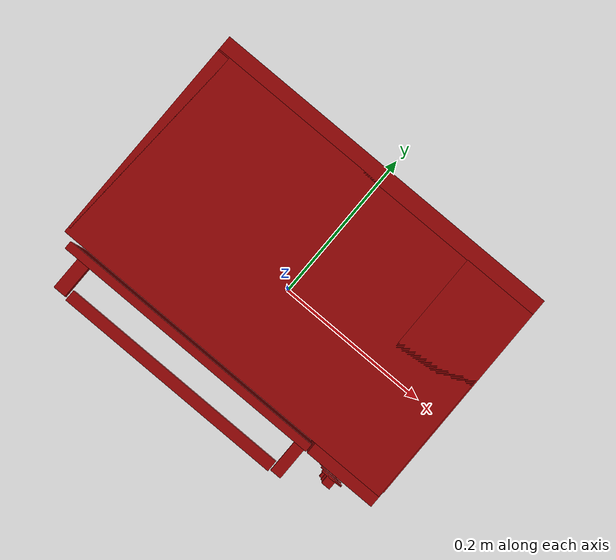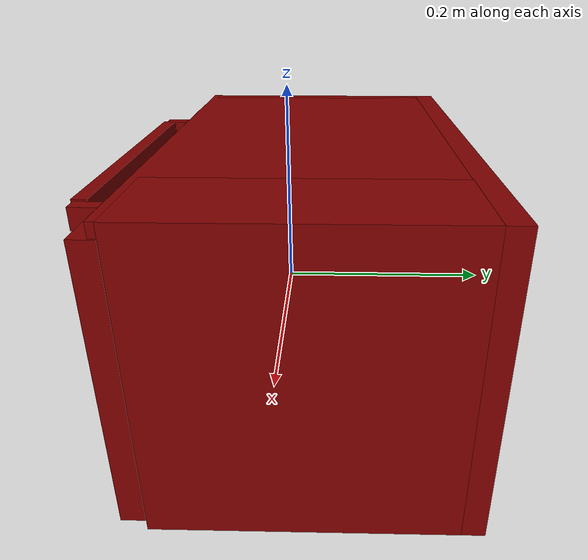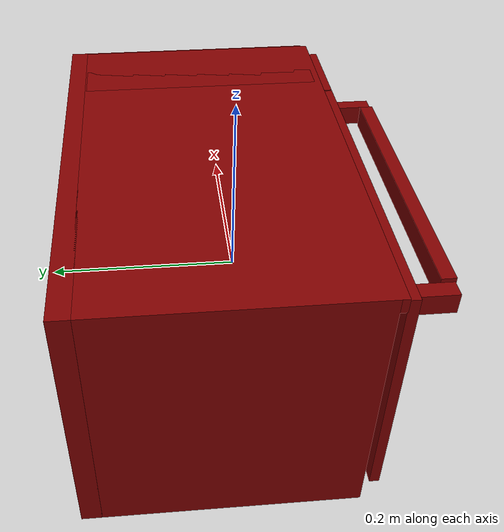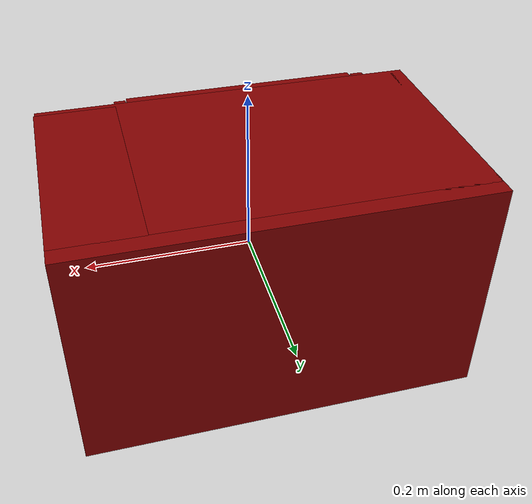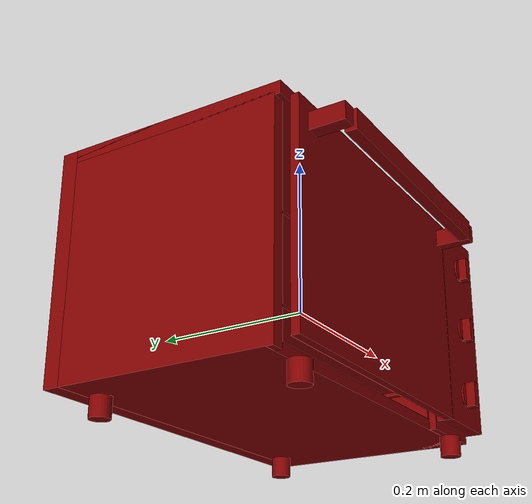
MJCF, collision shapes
<?xml version='1.0' encoding='UTF-8'?>
<mujoco model="model">
  <option timestep="0.002" gravity="0.0 0.0 -9.81"/>
  <compiler angle="radian"/>
  <asset>
    <mesh file="visuals/door.obj" name="door_vis"/>
    <mesh file="visuals/knob_function.obj" name="knob_function_vis"/>
    <mesh file="visuals/knob_temp.obj" name="knob_temp_vis"/>
    <mesh file="visuals/knob_time.obj" name="knob_time_vis"/>
    <mesh file="visuals/rack0.obj" name="rack0_vis"/>
    <mesh file="visuals/rack1.obj" name="rack1_vis"/>
    <mesh file="visuals/Body001.obj" name="Body001_vis"/>
    <mesh file="visuals/window.obj" name="window_vis"/>
    <texture file="visuals/T_BC001.png" name="Body001_material" type="2d"/>
    <material name="Body001_material" rgba="1 1 1 1.0" texture="Body001_material" shininess="0.1" specular="4"/>
    <texture file="visuals/T_BC001.png" name="door_material" type="2d"/>
    <material name="door_material" rgba="1 1 1 1.0" texture="door_material" shininess="0.1" specular="4"/>
    <texture file="visuals/T_BC001.png" name="window_material" type="2d"/>
    <material name="window_material" rgba="1 1 1 0.800000011920929" texture="window_material" shininess="0.5" specular="0.3103448502657381"/>
    <texture file="visuals/T_BC001.png" name="knob_function_material" type="2d"/>
    <material name="knob_function_material" rgba="1 1 1 1.0" texture="knob_function_material" shininess="0.1" specular="4"/>
    <texture file="visuals/T_BC001.png" name="knob_temp_material" type="2d"/>
    <material name="knob_temp_material" rgba="1 1 1 1.0" texture="knob_temp_material" shininess="0.1" specular="4"/>
    <texture file="visuals/T_BC001.png" name="knob_time_material" type="2d"/>
    <material name="knob_time_material" rgba="1 1 1 1.0" texture="knob_time_material" shininess="0.1" specular="4"/>
    <texture file="visuals/T_BC001.png" name="rack0_material" type="2d"/>
    <material name="rack0_material" rgba="1 1 1 1.0" texture="rack0_material" shininess="0.1" specular="4"/>
    <texture file="visuals/T_BC001.png" name="rack1_material" type="2d"/>
    <material name="rack1_material" rgba="1 1 1 1.0" texture="rack1_material" shininess="0.1" specular="4"/>
  </asset>
  <default>
    <default class="visual">
      <geom conaffinity="0" contype="0" group="1" type="mesh"/>
    </default>
    <default class="collision">
      <geom group="0" rgba="0.5 0 0 0.5"/>
    </default>
    <default class="spawn">
      <geom group="0" rgba="1 1 1 0.5" contype="0" conaffinity="0"/>
      <site group="0" rgba="1 1 1 0.5"/>
    </default>
    <default class="region">
      <geom group="1" conaffinity="0" contype="0" rgba="0 1 0 0"/>
    </default>
  </default>
  <worldbody>
    <body>
      <body name="object">
        <geom mesh="Body001_vis" type="mesh" solimp="0.998 0.998 0.001" solref="0.001 1" friction="0.95 0.3 0.1" class="visual" material="Body001_material"/>
        <geom class="collision" type="box" pos="-0.00000004 0.16368890 0.01245815" size="0.23210522532463074 0.010341917164623737 0.13799017667770386" quat="1.0 0.0 0.0 0.0"/>
        <geom class="collision" type="box" pos="0.18403973 0.02318614 0.01245818" size="0.04806550219655037 0.13078832626342773 0.13799016177654266" quat="1.0 0.0 0.0 0.0"/>
        <geom class="collision" type="box" pos="-0.00071467 0.02056913 0.14306955" size="0.2313905656337738 0.13502700626850128 0.007378776092082262" quat="1.0 0.0 0.0 0.0"/>
        <geom class="collision" type="box" pos="-0.22434117 0.02318614 0.01245818" size="0.007764093112200499 0.13078832626342773 0.13799014687538147" quat="1.0 0.0 0.0 0.0"/>
        <geom class="collision" type="box" pos="-0.00071466 0.02829303 -0.11909047" size="0.2313905656337738 0.1273030936717987 0.006441534962505102" quat="1.0 0.0 0.0 0.0"/>
        <geom class="collision" type="box" pos="0.18501197 -0.11851320 0.01133171" size="0.04709211364388466 0.01041125226765871 0.12681861221790314" quat="1.0 0.0 0.0 0.0"/>
        <geom class="collision" type="box" pos="-0.20989373 0.01721004 0.08126718" size="0.006050960160791874 0.11299090087413788 0.0022544660605490208" quat="1.0 0.0 0.0 0.0"/>
        <geom class="collision" type="box" pos="-0.20989373 0.01721004 0.06914129" size="0.006050952710211277 0.11299066245555878 0.002254462568089366" quat="1.0 0.0 0.0 0.0"/>
        <geom class="collision" type="box" pos="-0.20989373 0.01721004 0.03219697" size="0.00605094525963068 0.11299043148756027 0.0022544588427990675" quat="1.0 0.0 0.0 0.0"/>
        <geom class="collision" type="box" pos="-0.20989373 0.01721004 0.02021571" size="0.0060509382747113705 0.11299019306898117 0.0018324550474062562" quat="1.0 0.0 0.0 0.0"/>
        <geom class="collision" type="box" pos="-0.20989373 0.01721004 -0.01777984" size="0.0060509308241307735 0.11298996210098267 0.0022544513922184706" quat="1.0 0.0 0.0 0.0"/>
        <geom class="collision" type="box" pos="-0.20989373 0.01721004 -0.03019590" size="0.006050923373550177 0.11298972368240356 0.0015109623782336712" quat="1.0 0.0 0.0 0.0"/>
        <geom class="collision" type="box" pos="-0.20989373 0.01721004 -0.07843299" size="0.00605091592296958 0.11298949271440506 0.0017764520598575473" quat="1.0 0.0 0.0 0.0"/>
        <geom class="collision" type="box" pos="-0.20989373 0.01721004 -0.06628241" size="0.00605090893805027 0.11298925429582596 0.002254440449178219" quat="1.0 0.0 0.0 0.0"/>
        <geom class="collision" type="box" pos="0.12761271 0.01721004 -0.06628241" size="0.006050901487469673 0.11298902332782745 0.0022544367238879204" quat="1.0 0.0 0.0 0.0"/>
        <geom class="collision" type="box" pos="0.12761271 0.01721004 -0.07845075" size="0.006050894036889076 0.11298878490924835 0.0017586752073839307" quat="1.0 0.0 0.0 0.0"/>
        <geom class="collision" type="box" pos="0.12761271 0.01721004 -0.03019590" size="0.006050886586308479 0.11298855394124985 0.0015109520172700286" quat="1.0 0.0 0.0 0.0"/>
        <geom class="collision" type="box" pos="0.12761271 0.01721004 -0.01777984" size="0.00605087960138917 0.11298831552267075 0.0022544257808476686" quat="1.0 0.0 0.0 0.0"/>
        <geom class="collision" type="box" pos="0.12761271 0.01721004 0.02028058" size="0.006050872150808573 0.11298808455467224 0.0018972860416397452" quat="1.0 0.0 0.0 0.0"/>
        <geom class="collision" type="box" pos="0.12761271 0.01721004 0.03219697" size="0.006050864700227976 0.11298784613609314 0.0022544185630977154" quat="1.0 0.0 0.0 0.0"/>
        <geom class="collision" type="box" pos="0.12761271 0.01721004 0.08126718" size="0.006050857249647379 0.11298761516809464 0.002254414837807417" quat="1.0 0.0 0.0 0.0"/>
        <geom class="collision" type="box" pos="0.12761271 0.01721004 0.06914129" size="0.006050850264728069 0.11298737674951553 0.0022544111125171185" quat="1.0 0.0 0.0 0.0"/>
        <geom class="collision" type="cylinder" pos="0.18213566 -0.10557980 -0.13795262" size="0.012438795529305935 0.012438795529305935" quat="1.0 0.0 0.0 0.0"/>
        <geom class="collision" type="cylinder" pos="-0.18208216 -0.10557980 -0.13795262" size="0.012438795529305935 0.012438795529305935" quat="1.0 0.0 0.0 0.0"/>
        <geom class="collision" type="cylinder" pos="-0.18208216 0.13897224 -0.13795262" size="0.012438795529305935 0.012438795529305935" quat="1.0 0.0 0.0 0.0"/>
        <geom class="collision" type="cylinder" pos="0.18213566 0.13897224 -0.13795262" size="0.012438795529305935 0.012438795529305935" quat="1.0 0.0 0.0 0.0"/>
        <geom class="collision" type="box" pos="-0.22303692 0.02763497 -0.01389663" size="0.007764093112200499 0.12633949518203735 0.11163533478975296" quat="1.0 0.0 0.0 0.0"/>
        <geom class="collision" type="box" pos="0.13991499 0.02763497 -0.01389663" size="0.007764093112200499 0.12633949518203735 0.11163533478975296" quat="1.0 0.0 0.0 0.0"/>
        <body name="door">
          <joint axis="1.0 0.0 0.0" pos="-0.04165744 -0.12083712 -0.11436222" limited="true" name="door_joint" range="0.0 1.5007963267948966" type="hinge" damping="1" frictionloss="1" armature=".01" stiffness="0.5" springref="-3"/>
          <geom mesh="door_vis" type="mesh" solimp="0.998 0.998 0.001" solref="0.001 1" friction="0.95 0.3 0.1" class="visual" material="door_material"/>
          <geom class="collision" type="box" pos="-0.04253736 -0.12657736 0.01133171" size="0.17826074361801147 0.002346888417378068 0.12681756913661957" quat="1.0 0.0 0.0 0.0" name="door_main"/>
          <geom class="collision" type="box" pos="-0.03300186 -0.16659135 0.11339709" size="0.15037038922309875 0.00712622981518507 0.011782152578234673" quat="1.0 0.0 0.0 0.0" name="door_handle_main"/>
          <geom class="collision" type="box" pos="0.12630716 -0.14879026 0.11369939" size="0.00721341697499156 0.022259080782532692 0.01041791494935751" quat="1.0 0.0 0.0 0.0"/>
          <geom class="collision" type="box" pos="-0.19496211 -0.14879026 0.11369939" size="0.008266627788543701 0.022259052842855453 0.010417909361422062" quat="1.0 0.0 0.0 0.0"/>
          <geom class="collision" type="box" pos="-0.04253736 -0.12377840 0.01133171" size="0.17826417088508606 0.005145767237991095 0.12681955099105835" quat="1.0 0.0 0.0 0.0"/>
          <body name="window">
            <geom mesh="window_vis" type="mesh" solimp="0.998 0.998 0.001" solref="0.001 1" friction="0.95 0.3 0.1" class="visual" material="window_material"/>
            <geom class="collision" type="box" pos="-0.03660287 -0.12421291 0.00422699" size="0.17199179530143738 0.0010119384387508035 0.09566515684127808" quat="1.0 0.0 0.0 0.0"/>
          </body>
        </body>
        <body name="knob_function">
          <joint axis="0.0 1.0 0.0" pos="0.17915568 -0.14040320 -0.07821110" limited="true" name="knob_function_joint" range="0.0 5.497787143782138" type="hinge" damping="0.05" armature="1" frictionloss="0.75"/>
          <geom mesh="knob_function_vis" type="mesh" solimp="0.998 0.998 0.001" solref="0.001 1" friction="0.95 0.3 0.1" class="visual" material="knob_function_material"/>
          <geom class="collision" type="cylinder" pos="0.17915757 -0.13304178 -0.07795045" size="0.01605573296546936 0.0012484393082559109" quat="0.7071067094802856 -0.70710688829422 -1.5700929612083792e-16 -2.2148514736588345e-23" friction="100 0.5 0.01"/>
          <geom class="collision" type="box" pos="0.17875586 -0.14012370 -0.07795045" size="0.0064558242447674274 0.005700660403817892 0.01514404360204935" quat="1.0 0.0 0.0 0.0" name="knob_function_main" friction="100 0.5 0.01"/>
        </body>
        <body name="knob_temp">
          <joint axis="0.0 1.0 0.0" pos="0.17915589 -0.13802306 0.08867818" limited="true" name="knob_temp_joint" range="0.0 5.497787143782138" type="hinge" damping="0.05" armature="1" frictionloss="0.75"/>
          <geom mesh="knob_temp_vis" type="mesh" solimp="0.998 0.998 0.001" solref="0.001 1" friction="0.95 0.3 0.1" class="visual" material="knob_temp_material"/>
          <geom class="collision" type="cylinder" pos="0.17930715 -0.13408701 0.08932443" size="0.014410487376153469 0.001302103977650404" quat="0.7071067094802856 -0.70710688829422 -1.5700926965105832e-16 -1.2790030626010778e-23" friction="100 0.5 0.01"/>
          <geom class="collision" type="box" pos="0.17915757 -0.13992630 0.08898147" size="0.005749998148530722 0.00550345191732049 0.014060215093195438" quat="1.0 0.0 0.0 0.0" name="knob_temp_main" friction="100 0.5 0.01"/>
        </body>
        <body name="knob_time">
          <joint axis="0.0 1.0 0.0" pos="0.17915589 -0.13802306 0.00697362" limited="true" name="knob_time_joint" range="0.0 5.497787143782138" type="hinge" damping="0.05" armature="1" frictionloss="0.75"/>
          <geom mesh="knob_time_vis" type="mesh" solimp="0.998 0.998 0.001" solref="0.001 1" friction="0.95 0.3 0.1" class="visual" material="knob_time_material"/>
          <geom class="collision" type="cylinder" pos="0.17930715 -0.13371962 0.00734167" size="0.015191057696938515 0.0010731489164754748" quat="0.7071067094802856 -0.70710688829422 -1.5700926965105832e-16 -1.2790030626010778e-23" friction="100 0.5 0.01"/>
          <geom class="collision" type="box" pos="0.17915757 -0.13992630 0.00664275" size="0.005749998148530722 0.00550345191732049 0.014060215093195438" quat="1.0 0.0 0.0 0.0" name="knob_time_main" friction="100 0.5 0.01"/>
        </body>
        <body name="rack0">
          <geom class="region" name="reg_rack0" type="box" pos="-0.041243579999999995 0.017216585 -0.02779487" size="0.15547206 0.106855805 0.0464287"/>
          <joint axis="0.0 -1.0 0.0" pos="-0.04134392 0.01745739 -0.07494519" limited="true" name="rack0_joint" range="0.0 0.18" type="slide" damping="1" frictionloss="1" armature=".01" stiffness="0.05"/>
          <geom mesh="rack0_vis" type="mesh" solimp="0.998 0.998 0.001" solref="0.001 1" friction="0.95 0.3 0.1" class="visual" material="rack0_material"/>
          <geom class="collision" type="box" pos="-0.04138723 0.02086820 -0.07455844" size="0.16962195932865143 0.1171468049287796 0.0014621296431869268" quat="1.0 0.0 0.0 0.0"/>
        </body>
        <body name="rack1">
          <geom class="region" name="reg_rack1" type="box" pos="-0.041243579999999995 0.017216585 0.078855105" size="0.15547206 0.106855805 0.054228385000000004"/>
          <joint axis="0.0 -1.0 0.0" pos="-0.04070672 0.01855423 0.02400853" limited="true" name="rack1_joint" range="0.0 0.18" type="slide" damping="1" frictionloss="1" armature=".01" stiffness="0.05"/>
          <geom mesh="rack1_vis" type="mesh" solimp="0.998 0.998 0.001" solref="0.001 1" friction="0.95 0.3 0.1" class="visual" material="rack1_material"/>
          <geom class="collision" type="box" pos="-0.04138723 0.02086820 0.02382554" size="0.16962191462516785 0.11714676022529602 0.0015399974072352052" quat="1.0 0.0 0.0 0.0"/>
        </body>
        <geom class="region" name="reg_int" type="box" pos="-0.04142851500000001 0.030391659999999994 0.011743089999999998" size="0.171068285 0.12003088 0.1213404"/>
        <geom class="region" name="reg_main" type="box" pos="0.0 0.020978365 3.5300000000015874e-06" size="0.2331052 0.154099435 0.15143038"/>
      </body>
    </body>
  </worldbody>
  <actuator>
    <motor name="door_joint_actuator" joint="door_joint" gear="50"/>
    <motor name="knob_function_joint_actuator" joint="knob_function_joint" gear="50"/>
    <motor name="knob_temp_joint_actuator" joint="knob_temp_joint" gear="50"/>
    <motor name="knob_time_joint_actuator" joint="knob_time_joint" gear="50"/>
    <motor name="rack0_joint_actuator" joint="rack0_joint" gear="50"/>
    <motor name="rack1_joint_actuator" joint="rack1_joint" gear="50"/>
  </actuator>
</mujoco>
